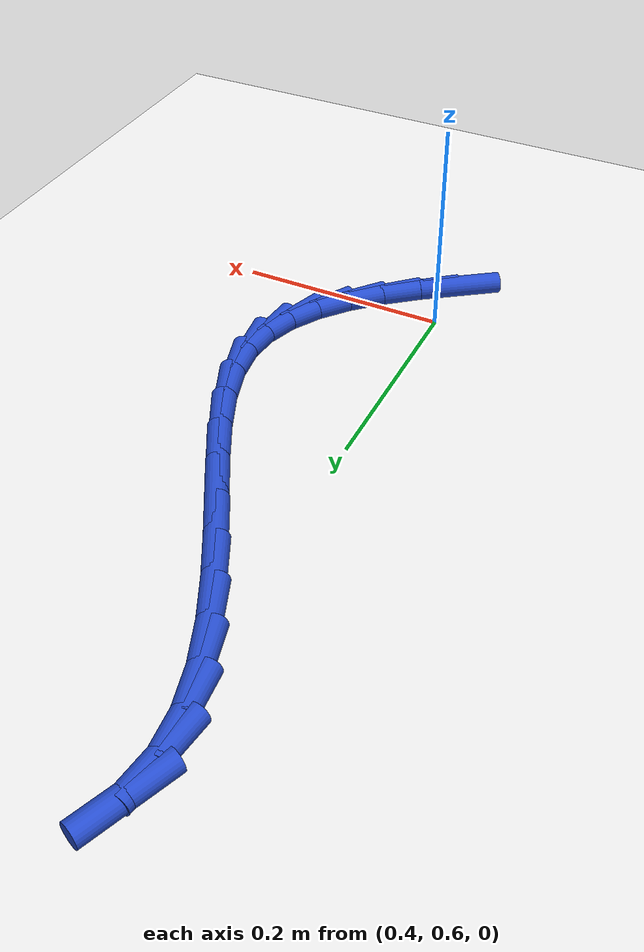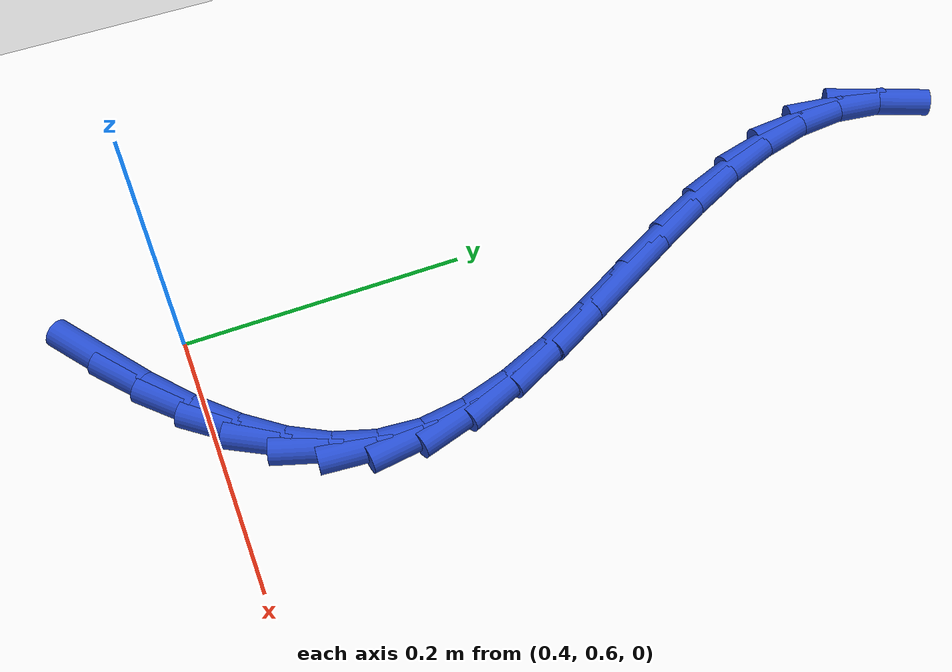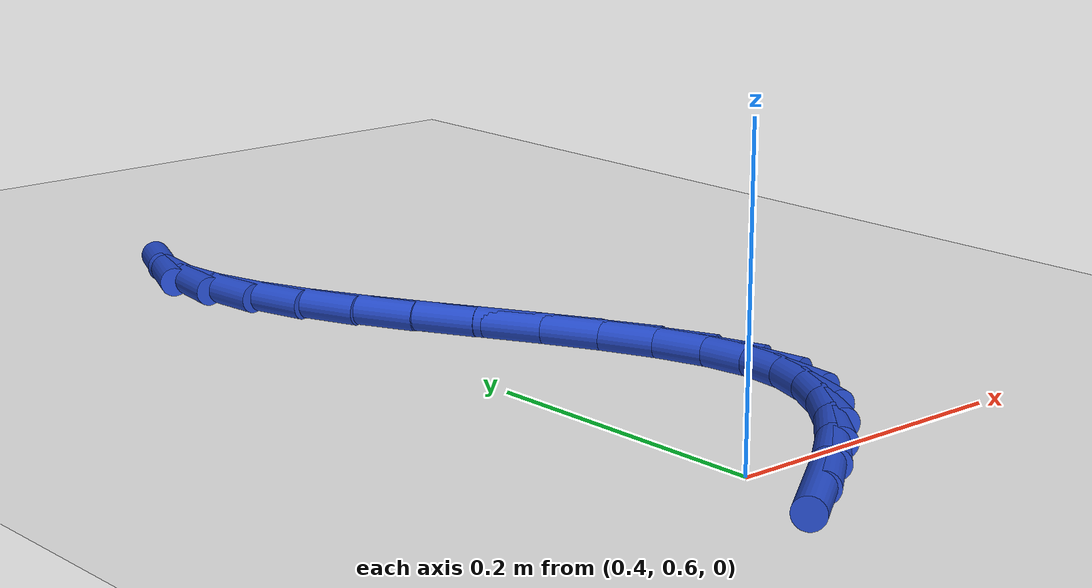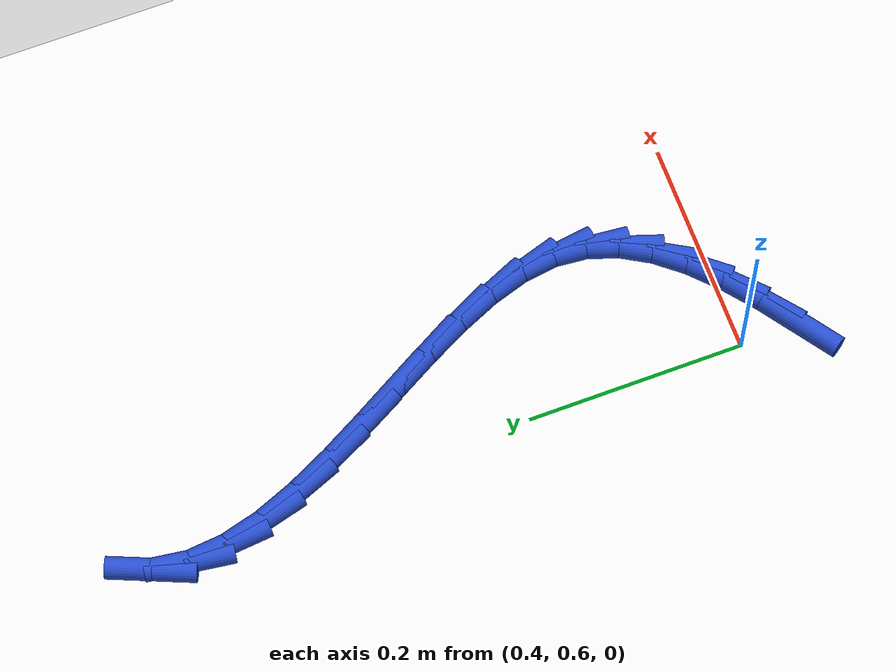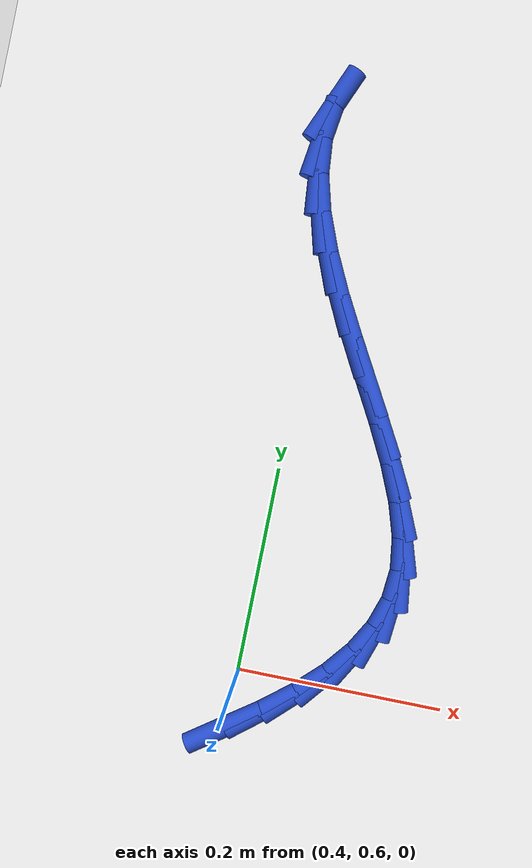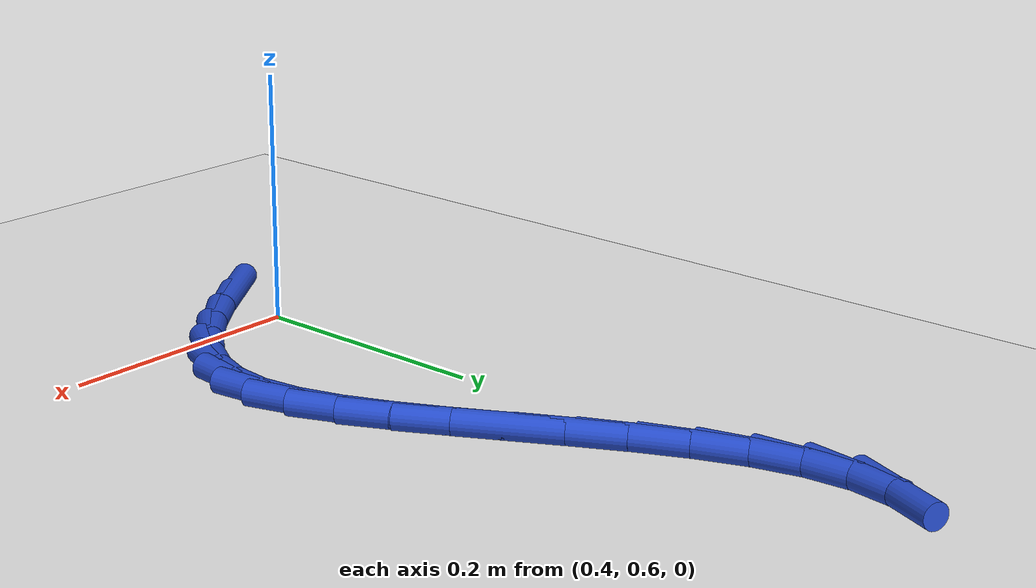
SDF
<sdf version="1.6">
 <world name="default">
  <model name="ground_plane">
   <static>1</static>
   <link name="link">
    <collision name="collision">
     <geometry><plane><normal>0 0 1</normal><size>100 100</size></plane></geometry>
     <surface><friction><ode><mu>100</mu><mu2>50</mu2></ode></friction></surface>
    </collision>
    <visual name="visual">
     <cast_shadows>0</cast_shadows>
     <geometry><plane><normal>0 0 1</normal><size>100 100</size></plane></geometry>
     <material>
      <script><uri>file://media/materials/scripts/gazebo.material</uri><name>Gazebo/WhiteGlow</name></script>
     </material>
    </visual>
   </link>
  </model>
  <model name="line">
   <link name="link_18">
    <pose>0.3977087357225377 0.5450418438306904 0.01 0 1.57 0.611663975774591</pose>
    <collision name="collision">
     <geometry><cylinder><radius>0.01</radius><length>0.08</length></cylinder></geometry>
    </collision>
    <visual name="visual">
     <material>
      <script><name>Gazebo/Blue</name><uri>file://media/materials/scripts/gazebo.material</uri></script>
     </material>
     <geometry><cylinder><radius>0.01</radius><length>0.08</length></cylinder></geometry>
    </visual>
   </link>
   <link name="link_19">
    <pose>0.4304498697605002 0.5680064279561511 0.01 0 1.57 0.673264350154995</pose>
    <collision name="collision">
     <geometry><cylinder><radius>0.01</radius><length>0.08</length></cylinder></geometry>
    </collision>
    <visual name="visual">
     <material>
      <script><name>Gazebo/Blue</name><uri>file://media/materials/scripts/gazebo.material</uri></script>
     </material>
     <geometry><cylinder><radius>0.01</radius><length>0.08</length></cylinder></geometry>
    </visual>
   </link>
   <link name="link_20">
    <pose>0.46000503261660847 0.5915790715271991 0.01 0 1.57 0.76091789722028</pose>
    <collision name="collision">
     <geometry><cylinder><radius>0.01</radius><length>0.08</length></cylinder></geometry>
    </collision>
    <visual name="visual">
     <material>
      <script><name>Gazebo/Blue</name><uri>file://media/materials/scripts/gazebo.material</uri></script>
     </material>
     <geometry><cylinder><radius>0.01</radius><length>0.08</length></cylinder></geometry>
    </visual>
   </link>
   <link name="link_21">
    <pose>0.4856520616568209 0.6160001744673538 0.01 0 1.57 0.8816727600473289</pose>
    <collision name="collision">
     <geometry><cylinder><radius>0.01</radius><length>0.08</length></cylinder></geometry>
    </collision>
    <visual name="visual">
     <material>
      <script><name>Gazebo/Blue</name><uri>file://media/materials/scripts/gazebo.material</uri></script>
     </material>
     <geometry><cylinder><radius>0.01</radius><length>0.08</length></cylinder></geometry>
    </visual>
   </link>
   <link name="link_22">
    <pose>0.5066687942470958 0.641510136700134 0.01 0 1.57 1.042497816932174</pose>
    <collision name="collision">
     <geometry><cylinder><radius>0.01</radius><length>0.08</length></cylinder></geometry>
    </collision>
    <visual name="visual">
     <material>
      <script><name>Gazebo/Blue</name><uri>file://media/materials/scripts/gazebo.material</uri></script>
     </material>
     <geometry><cylinder><radius>0.01</radius><length>0.08</length></cylinder></geometry>
    </visual>
   </link>
   <link name="link_23">
    <pose>0.5223330677533917 0.6683493581490595 0.01 0 1.57 1.2452481862263058</pose>
    <collision name="collision">
     <geometry><cylinder><radius>0.01</radius><length>0.08</length></cylinder></geometry>
    </collision>
    <visual name="visual">
     <material>
      <script><name>Gazebo/Blue</name><uri>file://media/materials/scripts/gazebo.material</uri></script>
     </material>
     <geometry><cylinder><radius>0.01</radius><length>0.08</length></cylinder></geometry>
    </visual>
   </link>
   <link name="link_24">
    <pose>0.5319227195416673 0.6967582387376494 0.01 0 1.57 1.4786370363565953</pose>
    <collision name="collision">
     <geometry><cylinder><radius>0.01</radius><length>0.08</length></cylinder></geometry>
    </collision>
    <visual name="visual">
     <material>
      <script><name>Gazebo/Blue</name><uri>file://media/materials/scripts/gazebo.material</uri></script>
     </material>
     <geometry><cylinder><radius>0.01</radius><length>0.08</length></cylinder></geometry>
    </visual>
   </link>
   <link name="link_25">
    <pose>0.5347155869778804 0.7269771783894226 0.01 0 1.57 -1.435639426139682</pose>
    <collision name="collision">
     <geometry><cylinder><radius>0.01</radius><length>0.08</length></cylinder></geometry>
    </collision>
    <visual name="visual">
     <material>
      <script><name>Gazebo/Blue</name><uri>file://media/materials/scripts/gazebo.material</uri></script>
     </material>
     <geometry><cylinder><radius>0.01</radius><length>0.08</length></cylinder></geometry>
    </visual>
   </link>
   <link name="link_26">
    <pose>0.5303402059073712 0.7591524227633402 0.01 0 1.57 -1.2702528226170002</pose>
    <collision name="collision">
     <geometry><cylinder><radius>0.01</radius><length>0.08</length></cylinder></geometry>
    </collision>
    <visual name="visual">
     <material>
      <script><name>Gazebo/Blue</name><uri>file://media/materials/scripts/gazebo.material</uri></script>
     </material>
     <geometry><cylinder><radius>0.01</radius><length>0.08</length></cylinder></geometry>
    </visual>
   </link>
   <link name="link_27">
    <pose>0.5198336268215733 0.7930520645795267 0.01 0 1.57 -1.1630410028933769</pose>
    <collision name="collision">
     <geometry><cylinder><radius>0.01</radius><length>0.08</length></cylinder></geometry>
    </collision>
    <visual name="visual">
     <material>
      <script><name>Gazebo/Blue</name><uri>file://media/materials/scripts/gazebo.material</uri></script>
     </material>
     <geometry><cylinder><radius>0.01</radius><length>0.08</length></cylinder></geometry>
    </visual>
   </link>
   <link name="link_28">
    <pose>0.5045864648831673 0.8283492727886803 0.01 0 1.57 -1.0981016810550528</pose>
    <collision name="collision">
     <geometry><cylinder><radius>0.01</radius><length>0.08</length></cylinder></geometry>
    </collision>
    <visual name="visual">
     <material>
      <script><name>Gazebo/Blue</name><uri>file://media/materials/scripts/gazebo.material</uri></script>
     </material>
     <geometry><cylinder><radius>0.01</radius><length>0.08</length></cylinder></geometry>
    </visual>
   </link>
   <link name="link_29">
    <pose>0.48598933525571253 0.8647172163412631 0.01 0 1.57 -1.0649590709952692</pose>
    <collision name="collision">
     <geometry><cylinder><radius>0.01</radius><length>0.08</length></cylinder></geometry>
    </collision>
    <visual name="visual">
     <material>
      <script><name>Gazebo/Blue</name><uri>file://media/materials/scripts/gazebo.material</uri></script>
     </material>
     <geometry><cylinder><radius>0.01</radius><length>0.08</length></cylinder></geometry>
    </visual>
   </link>
   <link name="link_30">
    <pose>0.46543285310276833 0.9018290641877366 0.01 0 1.57 -1.0580992196619974</pose>
    <collision name="collision">
     <geometry><cylinder><radius>0.01</radius><length>0.08</length></cylinder></geometry>
    </collision>
    <visual name="visual">
     <material>
      <script><name>Gazebo/Blue</name><uri>file://media/materials/scripts/gazebo.material</uri></script>
     </material>
     <geometry><cylinder><radius>0.01</radius><length>0.08</length></cylinder></geometry>
    </visual>
   </link>
   <link name="link_31">
    <pose>0.4443076335878947 0.9393579852785632 0.01 0 1.57 -1.0758896131094773</pose>
    <collision name="collision">
     <geometry><cylinder><radius>0.01</radius><length>0.08</length></cylinder></geometry>
    </collision>
    <visual name="visual">
     <material>
      <script><name>Gazebo/Blue</name><uri>file://media/materials/scripts/gazebo.material</uri></script>
     </material>
     <geometry><cylinder><radius>0.01</radius><length>0.08</length></cylinder></geometry>
    </visual>
   </link>
   <link name="link_32">
    <pose>0.42400429187465083 0.9769771485642048 0.01 0 1.57 -1.1200806771920526</pose>
    <collision name="collision">
     <geometry><cylinder><radius>0.01</radius><length>0.08</length></cylinder></geometry>
    </collision>
    <visual name="visual">
     <material>
      <script><name>Gazebo/Blue</name><uri>file://media/materials/scripts/gazebo.material</uri></script>
     </material>
     <geometry><cylinder><radius>0.01</radius><length>0.08</length></cylinder></geometry>
    </visual>
   </link>
   <link name="link_33">
    <pose>0.4059134431265963 1.0143597229951231 0.01 0 1.57 -1.1959199596454844</pose>
    <collision name="collision">
     <geometry><cylinder><radius>0.01</radius><length>0.08</length></cylinder></geometry>
    </collision>
    <visual name="visual">
     <material>
      <script><name>Gazebo/Blue</name><uri>file://media/materials/scripts/gazebo.material</uri></script>
     </material>
     <geometry><cylinder><radius>0.01</radius><length>0.08</length></cylinder></geometry>
    </visual>
   </link>
   <link name="link_34">
    <pose>0.3914257025072906 1.0511788775217803 0.01 0 1.57 -1.3124565982221763</pose>
    <collision name="collision">
     <geometry><cylinder><radius>0.01</radius><length>0.08</length></cylinder></geometry>
    </collision>
    <visual name="visual">
     <material>
      <script><name>Gazebo/Blue</name><uri>file://media/materials/scripts/gazebo.material</uri></script>
     </material>
     <geometry><cylinder><radius>0.01</radius><length>0.08</length></cylinder></geometry>
    </visual>
   </link>
   <link name="link_35">
    <pose>0.38193168518029325 1.0871077810946386 0.01 0 1.57 -1.4814492521608806</pose>
    <collision name="collision">
     <geometry><cylinder><radius>0.01</radius><length>0.08</length></cylinder></geometry>
    </collision>
    <visual name="visual">
     <material>
      <script><name>Gazebo/Blue</name><uri>file://media/materials/scripts/gazebo.material</uri></script>
     </material>
     <geometry><cylinder><radius>0.01</radius><length>0.08</length></cylinder></geometry>
    </visual>
   </link>
   <link name="link_36">
    <pose>0.3788220063091639 1.1218196026641596 0.01 0 1.57 1.43107414136999</pose>
    <collision name="collision">
     <geometry><cylinder><radius>0.01</radius><length>0.08</length></cylinder></geometry>
    </collision>
    <visual name="visual">
     <material>
      <script><name>Gazebo/Blue</name><uri>file://media/materials/scripts/gazebo.material</uri></script>
     </material>
     <geometry><cylinder><radius>0.01</radius><length>0.08</length></cylinder></geometry>
    </visual>
   </link>
   <link name="link_37">
    <pose>0.3834866973733591 1.154987537452271 0.01 0 1.57 1.1714464519156043</pose>
    <collision name="collision">
     <geometry><cylinder><radius>0.01</radius><length>0.08</length></cylinder></geometry>
    </collision>
    <visual name="visual">
     <material>
      <script><name>Gazebo/Blue</name><uri>file://media/materials/scripts/gazebo.material</uri></script>
     </material>
     <geometry><cylinder><radius>0.01</radius><length>0.08</length></cylinder></geometry>
    </visual>
   </link>
  </model>
 </world>
</sdf>
